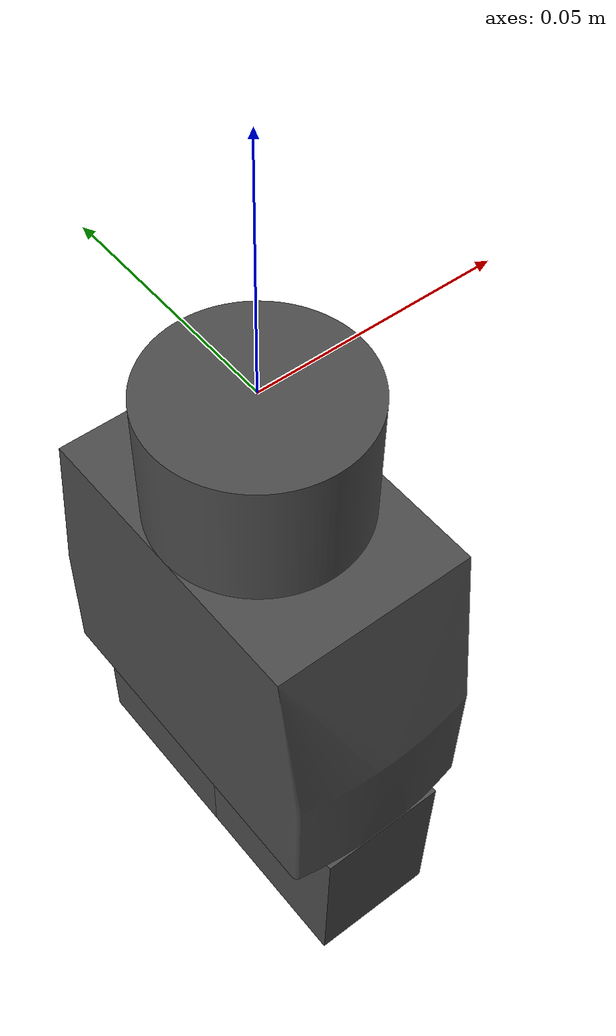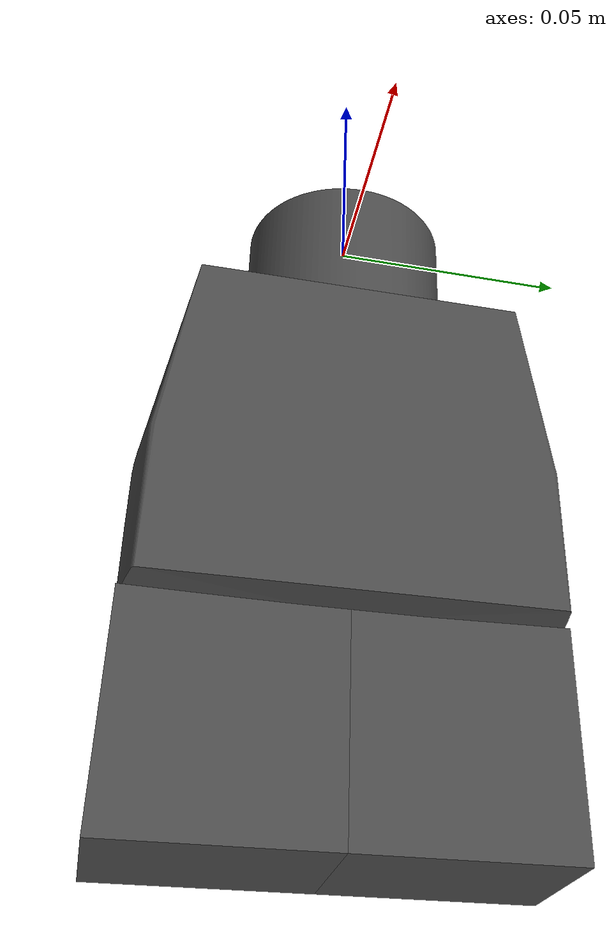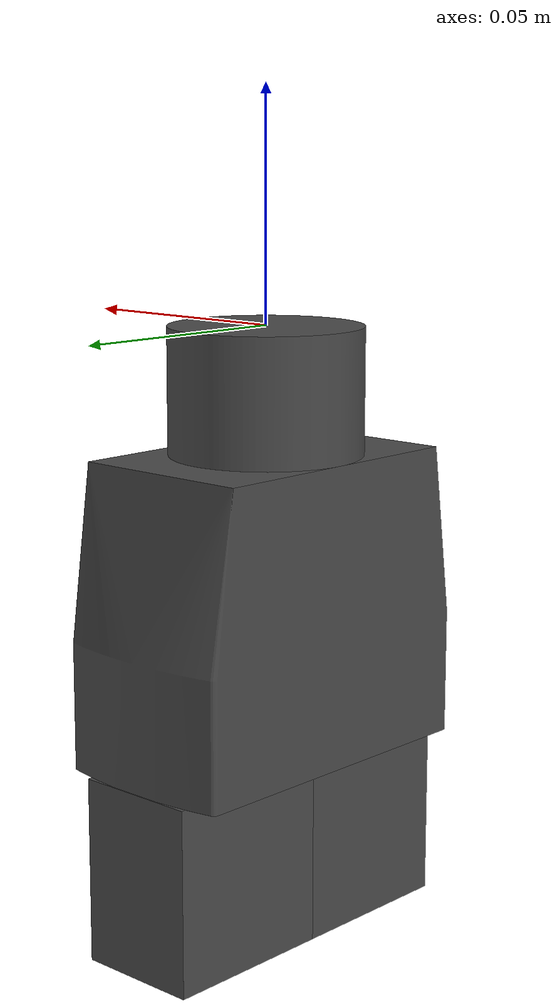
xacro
<?xml version="1.0"?>
<robot xmlns:xacro="http://www.ros.org/wiki/xacro" name="test_gripper_with_adapter" >

	<xacro:include filename="$(find test_gripper_description)/urdf/gripper_test_macro.urdf.xacro" />

	<xacro:Gripper_test_macro prefix="" tcp_xyz_origin="0 0 -0.1" tcp_rpy_origin="0 0 0"/>

	<link name="adapter">
		<visual>
			<origin rpy="0 0 0" xyz="0 0 0"/>
			<geometry>
				<mesh filename="package://test_gripper_description/meshes/adapter/visual/Adapter_Viper_S650_to_Gripper.stl" scale="0.001 0.001 0.001"/>
			</geometry>
			<material name="grey">
				<color rgba=".30 .30 .30 1"/>
			</material>
		</visual>

		<collision>
			<origin rpy="0 0 0" xyz="0 0 0"/>
			<geometry>
				<mesh filename="package://test_gripper_description/meshes/adapter/visual/Adapter_Viper_S650_to_Gripper.stl" scale="0.001 0.001 0.001"/>
			</geometry>
		</collision>
	</link>

	<joint name="adapter_to_test_gripper" type="fixed">
		<parent link="adapter" />
		<child link = "gripper_base_link" />
		<origin xyz="0.0 0.0 -0.0275" rpy="0.0 0.0 0.0" />
	</joint>

</robot>

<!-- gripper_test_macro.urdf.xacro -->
<robot xmlns:xacro="http://www.ros.org/wiki/xacro">

	<xacro:macro name="Gripper_test_macro" params="prefix tcp_xyz_origin tcp_rpy_origin ">

		<link name="${prefix}gripper_base_link">
			<visual>
				<origin xyz="0 0 0.0275" rpy="0 0 0"/>
				<geometry>
					<mesh filename="package://test_gripper_description/meshes/gripper_base/visual/gripper_base.stl" scale="0.001 0.001 0.001"/>
				</geometry>
				<material name="grey">
					<color rgba=".30 .30 .30 1"/>
				</material>

			</visual>
    			<collision>
      				<origin xyz="0 0 0.0275" rpy="0 0 0"/>
      				<geometry>
        				<mesh filename="package://test_gripper_description/meshes/gripper_base/collision/gripper_base.stl" scale="0.001 0.001 0.001"/>
      				</geometry>
    			</collision>
		</link>

		<joint name="${prefix}gripper_jaw_1_joint" type="prismatic">
			<origin xyz="0 0.024 -0.060" rpy="0 0 0"/>

			<parent link="${prefix}gripper_base_link"/>
			<child link="${prefix}gripper_jaw_1_link"/>
			<axis xyz="0 1 0"/>
			<limit lower="0.000" upper="0.008" effort="1200" velocity="0.15"/>
		</joint>

		<link name="${prefix}gripper_jaw_1_link">
			<visual>
				<origin xyz="0 -0.024 0.0875" rpy="0 0 0"/>
				<geometry>
					<mesh filename="package://test_gripper_description/meshes/gripper_jaw/visual/gripper_jaw_1.stl" scale="0.001 0.001 0.001"/>
				</geometry>
				<material name="grey" />

			</visual>
    			<collision>
      				<origin xyz="0 -0.024 0.0875" rpy="0 0 0"/>
      				<geometry>
        				<mesh filename="package://test_gripper_description/meshes/gripper_jaw/collision/gripper_jaw_1.stl" scale="0.001 0.001 0.001"/>
      				</geometry>
    			</collision>
		</link>

		<joint name="${prefix}gripper_jaw_2_joint" type="prismatic">
			<origin xyz="0 -0.024 -0.060" rpy="0 0 0"/>
			<parent link="${prefix}gripper_base_link"/>
			<child link="${prefix}gripper_jaw_2_link"/>
			<axis xyz="0 1 0"/>
			<limit lower="0.000" upper="-0.008" effort="1200" velocity="0.15"/>
			<mimic joint="${prefix}gripper_jaw_1_joint" multiplier="-1" />
		</joint>

		<link name="${prefix}gripper_jaw_2_link">
			<visual>
				<origin xyz="0 0.024 0.0875" rpy="0 0 0"/>
				<geometry>
					<mesh filename="package://test_gripper_description/meshes/gripper_jaw/visual/gripper_jaw_2.stl" scale="0.001 0.001 0.001"/>
				</geometry>
				<material name="grey" />

			</visual>
    			<collision>
      				<origin xyz="0 0.024 0.0875" rpy="0 0 0"/>
      				<geometry>
        				<mesh filename="package://test_gripper_description/meshes/gripper_jaw/collision/gripper_jaw_2.stl" scale="0.001 0.001 0.001"/>
      				</geometry>
    			</collision>
		</link>

		<joint name="${prefix}tcp_joint" type="fixed">
			<origin xyz="${tcp_xyz_origin}" rpy="${tcp_rpy_origin}" />
			<parent link="${prefix}gripper_base_link"/>
			<child link="${prefix}tcp_link"/>
		</joint>

		<link name="${prefix}tcp_link" />

	</xacro:macro>

</robot>
